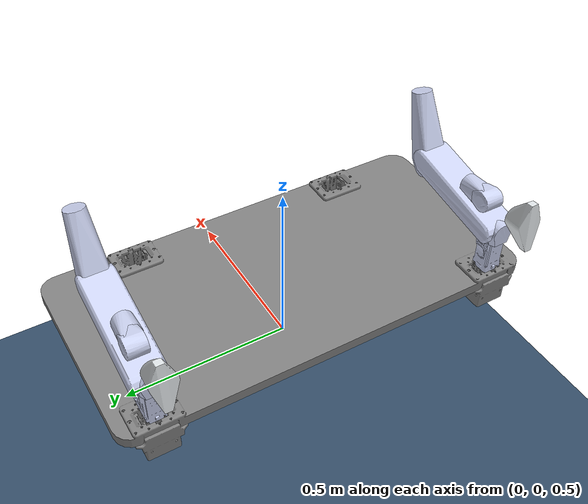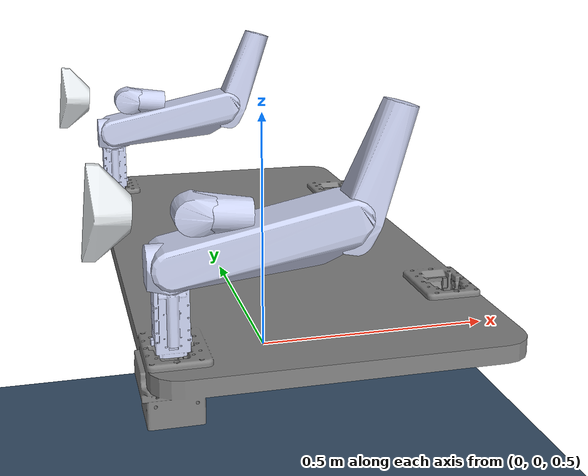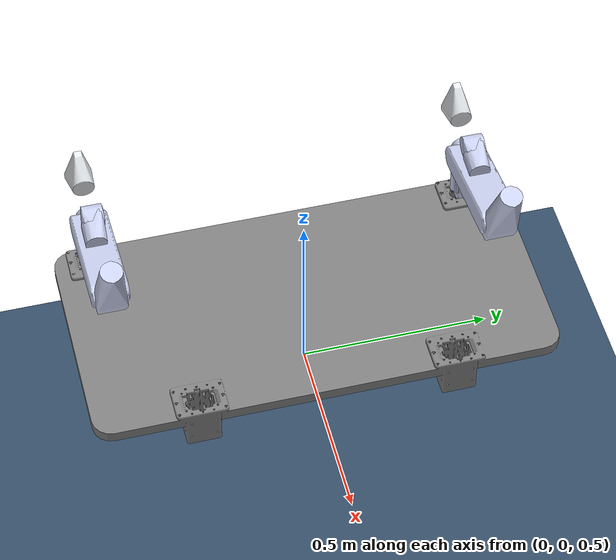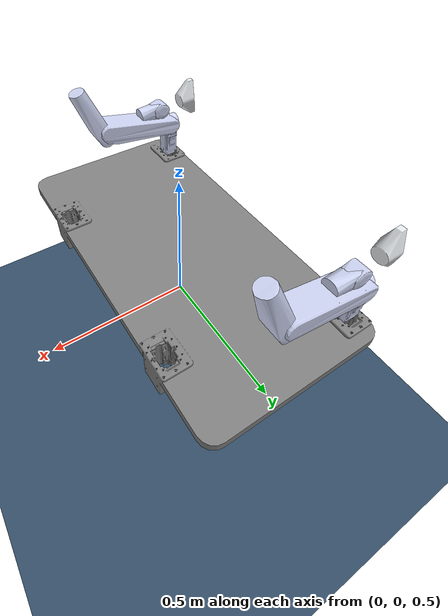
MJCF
<mujoco model="piper_table">
  <include file="../../assets/scene/floor_sky.xml" />
  <compiler angle="radian" meshdir="../../"/>
  <asset>
    <mesh name="table" file="assets/leaders/table.stl"/>
    <mesh name="base_link" file="assets/piper/base_link.STL"/>
    <mesh name="link1" file="assets/piper/link1.STL"/>
    <mesh name="link2" file="assets/piper/link2.STL"/>
    <mesh name="link3" file="assets/piper/link3.STL"/>
    <mesh name="link4" file="assets/piper/link4.STL"/>
    <mesh name="link5" file="assets/piper/link5.STL"/>
    <mesh name="link6" file="assets/piper/link6.STL"/>
  </asset>

  <contact>
    <exclude body1="env" body2="robot1/base_link" />
    <exclude body1="env" body2="robot1/link1" />
    <exclude body1="env" body2="robot1/link2" />
    <exclude body1="env" body2="robot2/base_link" />
    <exclude body1="env" body2="robot2/link1" />
    <exclude body1="env" body2="robot2/link2" />
    <exclude body1="robot1/base_link" body2="robot1/link1" />
    <exclude body1="robot1/base_link" body2="robot1/link2" />
    <exclude body1="robot1/base_link" body2="robot1/link3" />
    <exclude body1="robot1/base_link" body2="robot2/base_link" />
    <exclude body1="robot1/base_link" body2="robot2/link1" />
    <exclude body1="robot1/base_link" body2="robot2/link2" />
    <exclude body1="robot1/base_link" body2="robot2/link3" />
    <exclude body1="robot1/base_link" body2="robot2/link4" />
    <exclude body1="robot1/base_link" body2="robot2/link5" />
    <exclude body1="robot1/base_link" body2="robot2/link6" />
    <exclude body1="robot1/link1" body2="robot1/link2" />
    <exclude body1="robot1/link1" body2="robot1/link3" />
    <exclude body1="robot1/link1" body2="robot2/base_link" />
    <exclude body1="robot1/link1" body2="robot2/link1" />
    <exclude body1="robot1/link1" body2="robot2/link2" />
    <exclude body1="robot1/link1" body2="robot2/link3" />
    <exclude body1="robot1/link1" body2="robot2/link4" />
    <exclude body1="robot1/link1" body2="robot2/link5" />
    <exclude body1="robot1/link1" body2="robot2/link6" />
    <exclude body1="robot1/link2" body2="robot1/link3" />
    <exclude body1="robot1/link2" body2="robot1/link4" />
    <exclude body1="robot1/link2" body2="robot2/base_link" />
    <exclude body1="robot1/link2" body2="robot2/link1" />
    <exclude body1="robot1/link2" body2="robot2/link2" />
    <exclude body1="robot1/link2" body2="robot2/link3" />
    <exclude body1="robot1/link2" body2="robot2/link4" />
    <exclude body1="robot1/link2" body2="robot2/link5" />
    <exclude body1="robot1/link2" body2="robot2/link6" />
    <exclude body1="robot1/link3" body2="robot1/link4" />
    <exclude body1="robot1/link3" body2="robot1/link5" />
    <exclude body1="robot1/link3" body2="robot1/link6" />
    <exclude body1="robot1/link3" body2="robot2/base_link" />
    <exclude body1="robot1/link3" body2="robot2/link1" />
    <exclude body1="robot1/link3" body2="robot2/link2" />
    <exclude body1="robot1/link3" body2="robot2/link3" />
    <exclude body1="robot1/link3" body2="robot2/link4" />
    <exclude body1="robot1/link3" body2="robot2/link5" />
    <exclude body1="robot1/link3" body2="robot2/link6" />
    <exclude body1="robot1/link4" body2="robot1/link5" />
    <exclude body1="robot1/link4" body2="robot1/link6" />
    <exclude body1="robot1/link4" body2="robot2/base_link" />
    <exclude body1="robot1/link4" body2="robot2/link1" />
    <exclude body1="robot1/link4" body2="robot2/link2" />
    <exclude body1="robot1/link4" body2="robot2/link3" />
    <exclude body1="robot1/link4" body2="robot2/link4" />
    <exclude body1="robot1/link4" body2="robot2/link5" />
    <exclude body1="robot1/link4" body2="robot2/link6" />
    <exclude body1="robot1/link5" body2="robot1/link6" />
    <exclude body1="robot1/link5" body2="robot2/base_link" />
    <exclude body1="robot1/link5" body2="robot2/link1" />
    <exclude body1="robot1/link5" body2="robot2/link2" />
    <exclude body1="robot1/link5" body2="robot2/link3" />
    <exclude body1="robot1/link5" body2="robot2/link4" />
    <exclude body1="robot1/link5" body2="robot2/link5" />
    <exclude body1="robot1/link5" body2="robot2/link6" />
    <exclude body1="robot1/link6" body2="robot2/base_link" />
    <exclude body1="robot1/link6" body2="robot2/link1" />
    <exclude body1="robot1/link6" body2="robot2/link2" />
    <exclude body1="robot1/link6" body2="robot2/link3" />
    <exclude body1="robot1/link6" body2="robot2/link4" />
    <exclude body1="robot1/link6" body2="robot2/link5" />
    <exclude body1="robot1/link6" body2="robot2/link6" />
    <exclude body1="robot2/base_link" body2="robot2/link1" />
    <exclude body1="robot2/base_link" body2="robot2/link2" />
    <exclude body1="robot2/base_link" body2="robot2/link3" />
    <exclude body1="robot2/link1" body2="robot2/link2" />
    <exclude body1="robot2/link1" body2="robot2/link3" />
    <exclude body1="robot2/link2" body2="robot2/link3" />
    <exclude body1="robot2/link2" body2="robot2/link4" />
    <exclude body1="robot2/link3" body2="robot2/link4" />
    <exclude body1="robot2/link3" body2="robot2/link5" />
    <exclude body1="robot2/link3" body2="robot2/link6" />
    <exclude body1="robot2/link4" body2="robot2/link5" />
    <exclude body1="robot2/link4" body2="robot2/link6" />
    <exclude body1="robot2/link5" body2="robot2/link6" />
  </contact>

  <worldbody>
    <body name="env" pos="0 0 0.7">
      <inertial pos="-0.00217819 0.0115131 4.82153e-05" quat="0.707114 -9.18314e-06 9.18295e-06 0.707099" mass="24.32" diaginertia="3.22235 2.59731 0.632618"/>
      <geom type="mesh" rgba="0.501961 0.501961 0.501961 1" mesh="table"/>
      <body name="robot1/base_link" pos="-0.2599 0.50565 0.05189" quat="0.000796327 0 0 1">
        <inertial pos="-0.00473641 2.56829e-05 0.0414515" quat="0.70428 0.034288 0.0339756 0.708279" mass="1.02" diaginertia="0.00282612 0.00269117 0.000879394"/>
        <geom type="mesh" rgba="0.792157 0.819608 0.933333 1" mesh="base_link"/>
        <body name="robot1/link1" pos="0 0 0.123">
          <inertial pos="0.000121505 0.000104632 -0.00438597" quat="0.682111 0.730899 0.0143111 -0.0175062" mass="0.71" diaginertia="0.000489262 0.000439887 0.000404551"/>
          <joint name="robot1/joint1" pos="0 0 0" axis="0 0 1" range="-2.618 2.168" actuatorfrcrange="-100 100"/>
          <geom type="mesh" rgba="0.792157 0.819608 0.933333 1" mesh="link1"/>
          <body name="robot1/link2" quat="0.0356735 -0.0356786 -0.706207 -0.706205">
            <inertial pos="0.198666 -0.0109269 0.00142122" quat="0.510131 0.475585 0.525075 0.48773" mass="1.17" diaginertia="0.0679032 0.067745 0.00111966"/>
            <joint name="robot1/joint2" pos="0 0 0" axis="0 0 1" range="0 3.14" actuatorfrcrange="-100 100"/>
            <geom type="mesh" rgba="0.792157 0.819608 0.933333 1" mesh="link2"/>
            <body name="robot1/link3" pos="0.28503 0 0" quat="0.637536 0 0 -0.77042">
              <inertial pos="-0.0202738 -0.133915 -0.000458683" quat="0.706282 0.705111 0.0532202 0.0339395" mass="0.5" diaginertia="0.0138227 0.0138032 0.000244685"/>
              <joint name="robot1/joint3" pos="0 0 0" axis="0 0 1" range="-2.967 0" actuatorfrcrange="-100 100"/>
              <geom type="mesh" rgba="0.792157 0.819608 0.933333 1" mesh="link3"/>
              <body name="robot1/link4" pos="-0.021984 -0.25075 0" quat="0.707105 0.707108 0 0">
                <inertial pos="-9.66636e-05 0.000876064 -0.00496881" quat="0.714689 -0.0948484 0.0635223 0.690064" mass="0.38" diaginertia="0.000191586 0.000185052 0.000152863"/>
                <joint name="robot1/joint4" pos="0 0 0" axis="0 0 1" range="-1.745 1.745" actuatorfrcrange="-100 100"/>
                <geom type="mesh" rgba="0.792157 0.819608 0.933333 1" mesh="link4"/>
                <body name="robot1/link5" quat="0.707105 -0.707108 0 0">
                  <inertial pos="-4.10554e-05 -0.0566487 -0.00372058" quat="0.709589 0.704614 0.00134613 -0.00132656" mass="0.383" diaginertia="0.00166169 0.00164328 0.000185028"/>
                  <joint name="robot1/joint5" pos="0 0 0" axis="0 0 1" range="-1.22 1.22" actuatorfrcrange="-100 100"/>
                  <geom type="mesh" rgba="0.792157 0.819608 0.933333 1" mesh="link5"/>
                  <body name="robot1/link6" pos="8.8259e-05 -0.091 0" quat="0.707105 0.707108 0 0">
                    <inertial pos="-8.82591e-05 9.05984e-06 -0.002" quat="0.5 0.5 -0.5 0.5" mass="0.0069909" diaginertia="1.06739e-06 5.73016e-07 5.73016e-07"/>
                    <joint name="robot1/joint6" pos="0 0 0" axis="0 0 1" range="-2.0944 2.0944" actuatorfrcrange="-100 100"/>
                    <geom type="mesh" rgba="0.898039 0.917647 0.929412 1" mesh="link6"/>
                  </body>
                </body>
              </body>
            </body>
          </body>
        </body>
      </body>
      <body name="robot2/base_link" pos="-0.2599 -0.50535 0.05189" quat="0.000796327 0 0 1">
        <inertial pos="-0.00473641 2.56829e-05 0.0414515" quat="0.70428 0.034288 0.0339756 0.708279" mass="1.02" diaginertia="0.00282612 0.00269117 0.000879394"/>
        <geom type="mesh" rgba="0.792157 0.819608 0.933333 1" mesh="base_link"/>
        <body name="robot2/link1" pos="0 0 0.123">
          <inertial pos="0.000121505 0.000104632 -0.00438597" quat="0.682111 0.730899 0.0143111 -0.0175062" mass="0.71" diaginertia="0.000489262 0.000439887 0.000404551"/>
          <joint name="robot2/joint1" pos="0 0 0" axis="0 0 1" range="-2.618 2.168" actuatorfrcrange="-100 100"/>
          <geom type="mesh" rgba="0.792157 0.819608 0.933333 1" mesh="link1"/>
          <body name="robot2/link2" quat="0.0356735 -0.0356786 -0.706207 -0.706205">
            <inertial pos="0.198666 -0.0109269 0.00142122" quat="0.510131 0.475585 0.525075 0.48773" mass="1.17" diaginertia="0.0679032 0.067745 0.00111966"/>
            <joint name="robot2/joint2" pos="0 0 0" axis="0 0 1" range="0 3.14" actuatorfrcrange="-100 100"/>
            <geom type="mesh" rgba="0.792157 0.819608 0.933333 1" mesh="link2"/>
            <body name="robot2/link3" pos="0.28503 0 0" quat="0.637536 0 0 -0.77042">
              <inertial pos="-0.0202738 -0.133915 -0.000458683" quat="0.706282 0.705111 0.0532202 0.0339395" mass="0.5" diaginertia="0.0138227 0.0138032 0.000244685"/>
              <joint name="robot2/joint3" pos="0 0 0" axis="0 0 1" range="-2.967 0" actuatorfrcrange="-100 100"/>
              <geom type="mesh" rgba="0.792157 0.819608 0.933333 1" mesh="link3"/>
              <body name="robot2/link4" pos="-0.021984 -0.25075 0" quat="0.707105 0.707108 0 0">
                <inertial pos="-9.66636e-05 0.000876064 -0.00496881" quat="0.714689 -0.0948484 0.0635223 0.690064" mass="0.38" diaginertia="0.000191586 0.000185052 0.000152863"/>
                <joint name="robot2/joint4" pos="0 0 0" axis="0 0 1" range="-1.745 1.745" actuatorfrcrange="-100 100"/>
                <geom type="mesh" rgba="0.792157 0.819608 0.933333 1" mesh="link4"/>
                <body name="robot2/link5" quat="0.707105 -0.707108 0 0">
                  <inertial pos="-4.10554e-05 -0.0566487 -0.00372058" quat="0.709589 0.704614 0.00134613 -0.00132656" mass="0.383" diaginertia="0.00166169 0.00164328 0.000185028"/>
                  <joint name="robot2/joint5" pos="0 0 0" axis="0 0 1" range="-1.22 1.22" actuatorfrcrange="-100 100"/>
                  <geom type="mesh" rgba="0.792157 0.819608 0.933333 1" mesh="link5"/>
                  <body name="robot2/link6" pos="8.8259e-05 -0.091 0" quat="0.707105 0.707108 0 0">
                    <inertial pos="-8.82591e-05 9.05984e-06 -0.002" quat="0.5 0.5 -0.5 0.5" mass="0.0069909" diaginertia="1.06739e-06 5.73016e-07 5.73016e-07"/>
                    <joint name="robot2/joint6" pos="0 0 0" axis="0 0 1" range="-2.0944 2.0944" actuatorfrcrange="-100 100"/>
                    <geom type="mesh" rgba="0.898039 0.917647 0.929412 1" mesh="link6"/>
                  </body>
                </body>
              </body>
            </body>
          </body>
        </body>
      </body>
    </body>
  </worldbody>
</mujoco>

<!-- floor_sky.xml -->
<mujoco model="floor and sky">

    <!-- Haze -->
    <visual>
        <headlight diffuse="0.6 0.6 0.6" ambient="0.1 0.1 0.1" specular="0 0 0" />
        <rgba haze="0.15 0.25 0.35 1" />
        <global azimuth="120" elevation="-20" />
    </visual>

    <!-- Asset -->
    <asset>
        <!-- Sky -->
        <texture type="skybox" builtin="gradient" rgb1="0.1 0.2 0.3" rgb2="0 0 0" width="512"
            height="3072" />
        <!-- Ground -->
        <texture type="2d" name="groundplane" builtin="checker" mark="edge" rgb1="0.3 0.4 0.5"
            rgb2="0.1 0.2 0.3" markrgb="0.8 0.8 0.8" width="300" height="300" />
        <material name="groundplane" texture="groundplane" texuniform="true" texrepeat="2 2"
            reflectance="0.2" />
    </asset>

    <!-- Light and floor -->
    <worldbody>
        <light pos="0 0 3" dir="0 0 -1" directional="true" diffuse="1 1 1"/>
        <geom name="floor" size="0 0 0.05" type="plane" material="groundplane" />
    </worldbody>

</mujoco>
